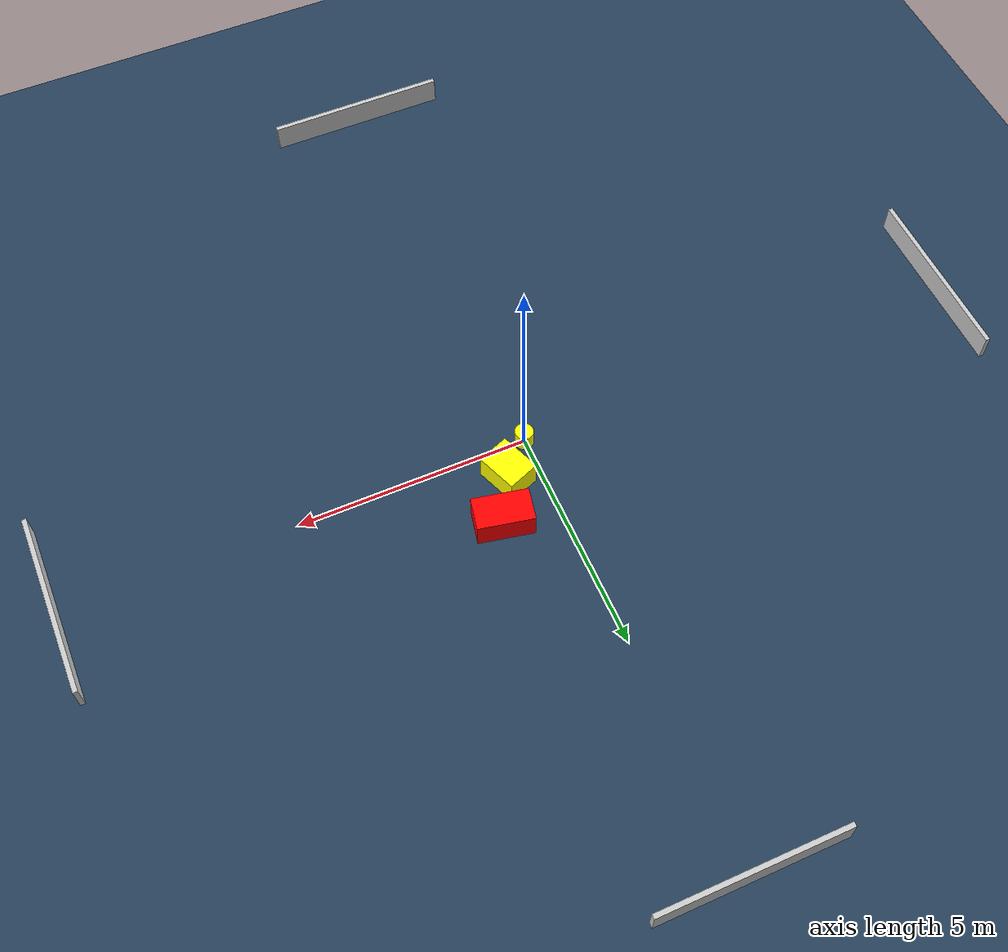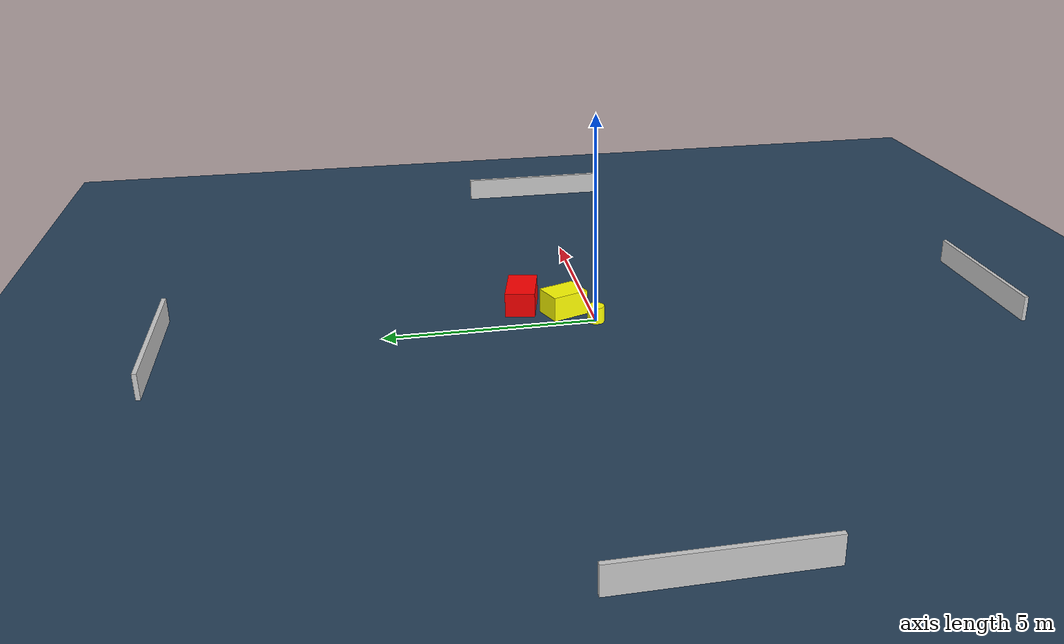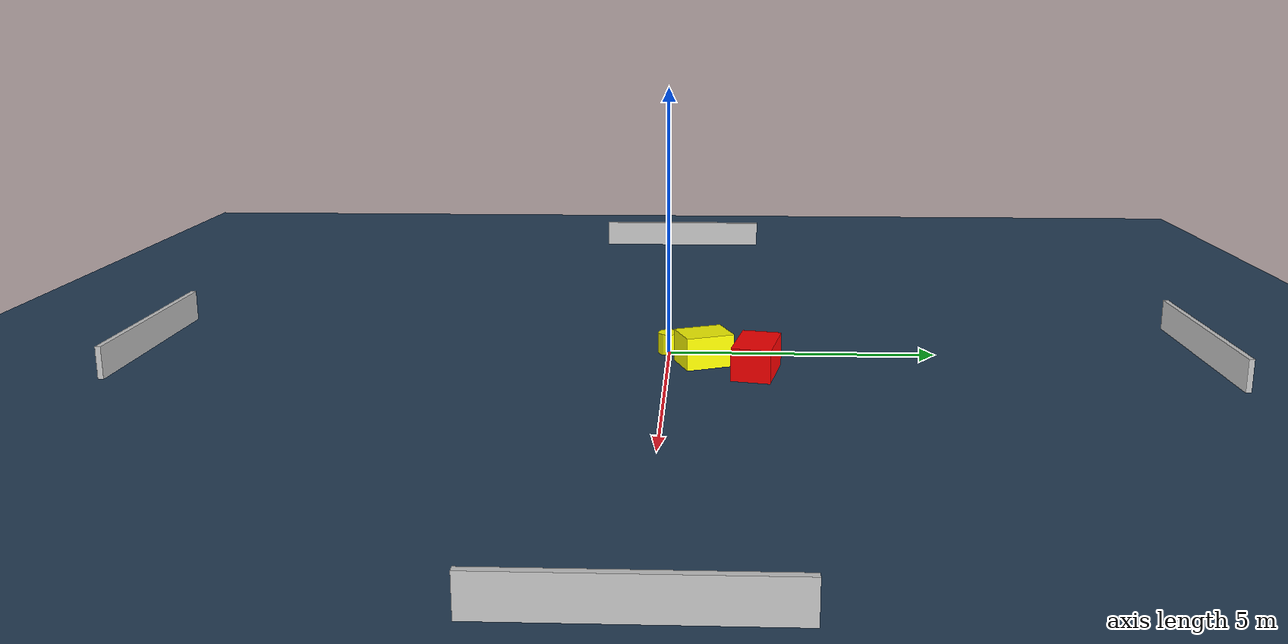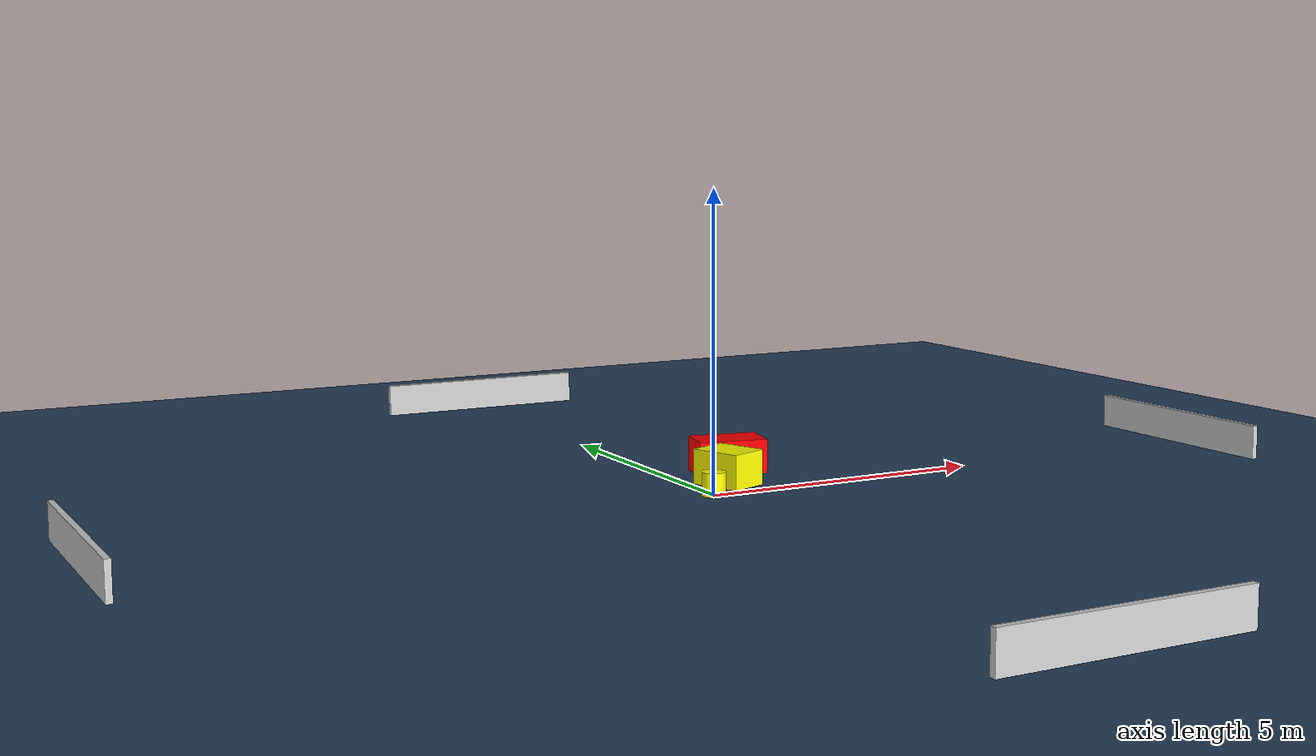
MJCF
<?xml version="1.0" ?>
<mujoco model="generated_environment">
  <option timestep="0.01" integrator="RK4" cone="elliptic"/>
  <default>
    <geom density="1"/>
  </default>
  <asset>
    <texture builtin="gradient" height="3072" name="skybox" rgb1="0.3 0.5 0.7" rgb2="0 0 0" type="skybox" width="512"/>
    <texture builtin="checker" height="300" name="groundplane" rgb1="0.2 0.3 0.4" rgb2="0.1 0.2 0.3" type="2d" width="300"/>
    <material name="groundplane" reflectance="0.2" texrepeat="5 5" texture="groundplane"/>
  </asset>
  <worldbody>
    <light dir="0 0 -1" directional="true" pos="0 0 1.5"/>
    <geom condim="3" friction="0.5 0.005 0.001" material="groundplane" name="floor" pos="0 0 0" size="0 0 0.05" type="plane"/>
    <body name="walls">
      <geom name="wall_1" condim="4" pos="-10.0 0.0 0.3" rgba="0.800000011920929 0.800000011920929 0.800000011920929 1.0" size="0.05 2.0 0.3" type="box"/>
      <geom name="wall_2" condim="4" pos="10.0 0.0 0.3" rgba="0.800000011920929 0.800000011920929 0.800000011920929 1.0" size="0.05 2.0 0.3" type="box"/>
      <geom name="wall_3" condim="4" pos="0.0 -10.0 0.3" rgba="0.800000011920929 0.800000011920929 0.800000011920929 1.0" size="2.0 0.05 0.3" type="box"/>
      <geom name="wall_4" condim="4" pos="0.0 10.0 0.3" rgba="0.800000011920929 0.800000011920929 0.800000011920929 1.0" size="2.0 0.05 0.3" type="box"/>
    </body>
    <body name="robot">
      <joint name="joint_x" type="slide" pos="0 0 0" axis="1 0 0"/>
      <joint name="joint_y" type="slide" pos="0 0 0" axis="0 1 0"/>
      <geom name="robot" type="cylinder" pos="0.0 0.0 0.2" size="0.2 0.2 0.0" mass="5.0" friction="1.0 0.005 0.0001" condim="4" rgba="1.0 1.0 0.0 1.0"/>
    </body>
    <body name="obstacle_1_movable">
      <geom name="obstacle_1_movable" condim="4" pos="0.6483717380505718 0.668503061251195 0.3" euler="0 0 21.192845239163205" friction="0.0 0.005 0.001" rgba="1.0 1.0 0.0 1.0" size="0.35719096863466065 0.45575273997332527 0.3" type="box" mass="0.1"/>
      <joint type="free"/>
    </body>
    <body name="obstacle_2_static">
      <geom name="obstacle_2_static" condim="4" pos="1.1739210762730017 1.6158891195042047 0.3" euler="0 0 258.3423504806889" friction="0.0 0.005 0.001" rgba="1.0 0.0 0.0 1.0" size="0.35601777557412234 0.601946056192362 0.3" type="box"/>
    </body>
  </worldbody>
  <actuator>
    <motor name="actuator_x" joint="joint_x" gear="1" ctrlrange="-1 1"/>
    <motor name="actuator_y" joint="joint_y" gear="1" ctrlrange="-1 1"/>
  </actuator>
</mujoco>
